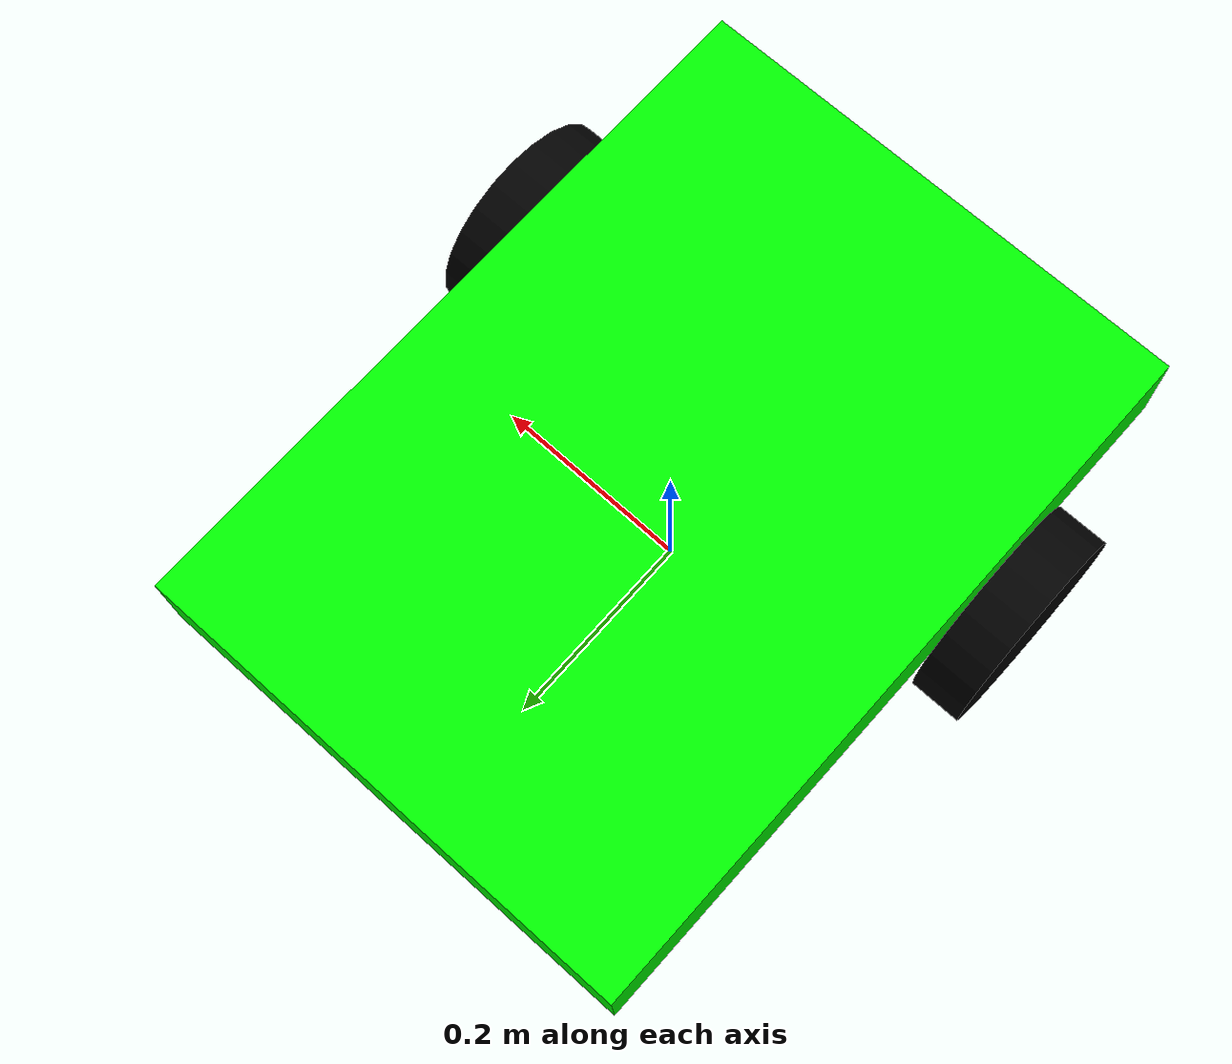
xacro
<?xml version="1.0"?>
<robot name="duo" xmlns:xacro="http://www.ros.org/wiki/xacro">

  <!-- Define some properties for reusability -->
  <xacro:property name="base_length" value="0.5"/>
  <xacro:property name="base_width" value="0.7"/>
  <xacro:property name="base_height" value="0.1"/>
  <xacro:property name="wheel_radius" value="0.1"/>
  <xacro:property name="wheel_length" value="0.05"/>
  <xacro:property name="wheel_mass" value="0.1"/>
  <xacro:property name="caster_wheel_radius" value="0.050"/>
  <xacro:property name="caster_wheel_length" value="0.02"/>
  <xacro:property name="caster_mount_size" value="0.1 0.1 0.02"/>
  <xacro:property name="caster_mount_mass" value="0.1"/>
  <xacro:property name="dummy_mass" value="0.5"/>
  <xacro:property name="dummy_ixx" value="0.02083333333333333"/>
  <xacro:property name="dummy_iyy" value="0.010833333333333334"/>
  <xacro:property name="dummy_izz" value="0.03083333333333333"/>
  <xacro:property name="green_color" value="0 1 0 1"/>
  <xacro:property name="black_color" value="0 0 0 1"/>
  <xacro:property name="gray_color" value="0.5 0.5 0.5 1"/>

  <!-- Define reusable macros -->
  <xacro:macro name="base_link" params="name length width height color">
    <link name="${name}">
      <visual>
        <geometry>
          <box size="${length} ${width} ${height}"/>
        </geometry>
        <material name="color">
          <color rgba="${color}"/>
        </material>
      </visual>
      <collision>
        <geometry>
          <box size="${length} ${width} ${height}"/>
        </geometry>
      </collision>
    </link>
  </xacro:macro>

  <xacro:macro name="wheel_link" params="name radius length color mass ixx iyy izz">
    <link name="${name}">
      <inertial>
        <origin xyz="0 0 0" rpy="0 0 0"/>
        <mass value="${mass}"/>
        <inertia ixx="${ixx}" ixy="0" ixz="0" iyy="${iyy}" iyz="0" izz="${izz}"/>
      </inertial>
      <visual>
        <geometry>
          <cylinder radius="${radius}" length="${length}"/>
        </geometry>
        <material name="color">
          <color rgba="${color}"/>
        </material>
      </visual>
      <collision>
        <geometry>
          <cylinder radius="${radius}" length="${length}"/>
        </geometry>
      </collision>
    </link>
  </xacro:macro>

  <!-- Base Reference Link -->
  <link name="base_reference">
    <inertial>
      <origin xyz="0 0 0" rpy="0 0 0"/>
      <mass value="0.001"/>
      <inertia ixx="0.001" ixy="0" ixz="0" iyy="0.001" iyz="0" izz="0.001"/>
    </inertial>
  </link>

  <!-- Dummy Link -->
  <link name="dummy_link">
    <inertial>
      <origin xyz="0 0 0" rpy="0 0 0"/>
      <mass value="${dummy_mass}"/>
      <inertia ixx="${dummy_ixx}" ixy="0" ixz="0" iyy="${dummy_iyy}" iyz="0" izz="${dummy_izz}"/>
    </inertial>
  </link>

  <!-- Base Link -->
  <xacro:base_link name="base_link" length="${base_length}" width="${base_width}" height="${base_height}" color="${green_color}"/>

  <!-- Left Wheel -->
  <xacro:wheel_link name="left_wheel" radius="${wheel_radius}" length="${wheel_length}" color="${black_color}" mass="${wheel_mass}" ixx="0.0002708333333333334" iyy="0.0002708333333333334" izz="0.0005000000000000001"/>

  <!-- Right Wheel -->
  <xacro:wheel_link name="right_wheel" radius="${wheel_radius}" length="${wheel_length}" color="${black_color}" mass="${wheel_mass}" ixx="0.0002708333333333334" iyy="0.0002708333333333334" izz="0.0005000000000000001"/>

  <!-- Caster Wheel -->
  <xacro:wheel_link name="caster_wheel" radius="${caster_wheel_radius}" length="${caster_wheel_length}" color="${black_color}" mass="0.05" ixx="3.291666666666667e-05" iyy="3.291666666666667e-05" izz="6.250000000000001e-05"/>

  <!-- Caster Mount -->
  <link name="caster_mount">
    <inertial>
      <origin xyz="0 0 0" rpy="0 0 0"/>
      <mass value="${caster_mount_mass}"/>
      <inertia ixx="8.666666666666668e-05" ixy="0" ixz="0" iyy="8.666666666666668e-05" iyz="0" izz="0.00016666666666666672"/>
    </inertial>
    <visual>
      <geometry>
        <box size="${caster_mount_size}"/>
      </geometry>
      <material name="gray">
        <color rgba="${gray_color}"/>
      </material>
    </visual>
  </link>

  <!-- Joint Definitions -->
  <joint name="base_reference_to_base_link" type="fixed">
    <parent link="base_reference" />
    <child link="base_link" />
    <origin xyz="0 0 0.17" rpy="0 0 0" /> <!-- Adjust the height here -->
  </joint>

  <joint name="base_link_to_dummy_link" type="fixed">
    <parent link="base_link" />
    <child link="dummy_link" />
    <origin xyz="0 0 0" rpy="0 0 0" />
  </joint>

  <joint name="left_wheel_joint" type="continuous">
    <parent link="base_link"/>
    <child link="left_wheel"/>
    <origin xyz="-0.277 -0.13 -0.07" rpy="0 1.5708 0"/>
    <axis xyz="0 0 1"/>
  </joint>

  <joint name="right_wheel_joint" type="continuous">
    <parent link="base_link"/>
    <child link="right_wheel"/>
    <origin xyz="0.277 -0.13 -0.07" rpy="0 1.5708 0"/>
    <axis xyz="0 0 1"/>
  </joint>

  <joint name="caster_mount_joint" type="continuous">
    <parent link="base_link"/>
    <child link="caster_mount"/>
    <origin xyz="0 0.25 -0.062" rpy="0 0 0"/>
    <axis xyz="0 0 1"/>
  </joint>

  <joint name="caster_wheel_joint" type="continuous">
    <parent link="caster_mount"/>
    <child link="caster_wheel"/>
    <origin xyz="0 0 -0.06" rpy="0 1.5708 0"/>
    <axis xyz="0 0 1"/>
  </joint>

</robot>
